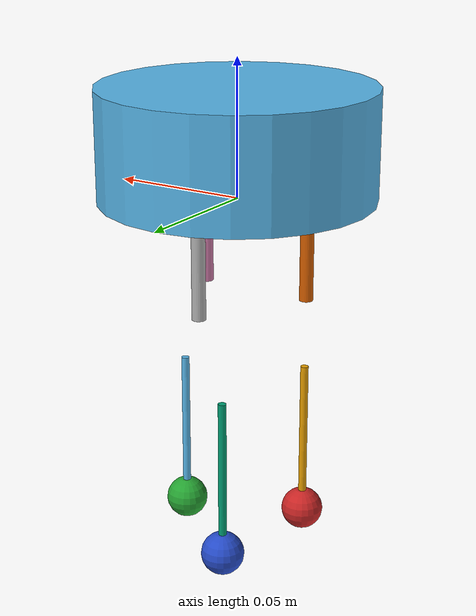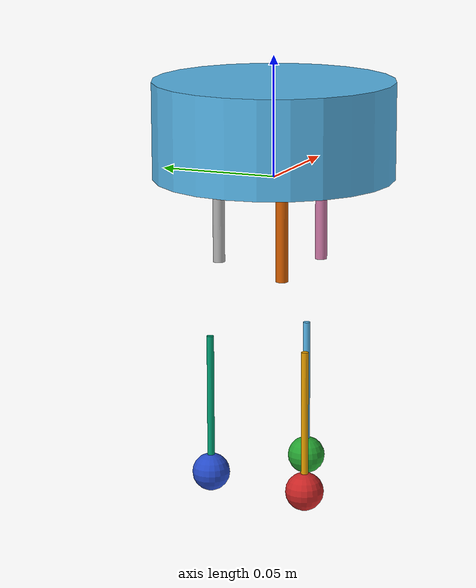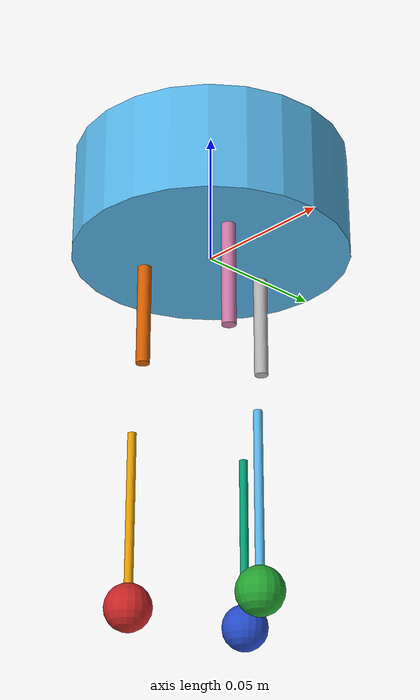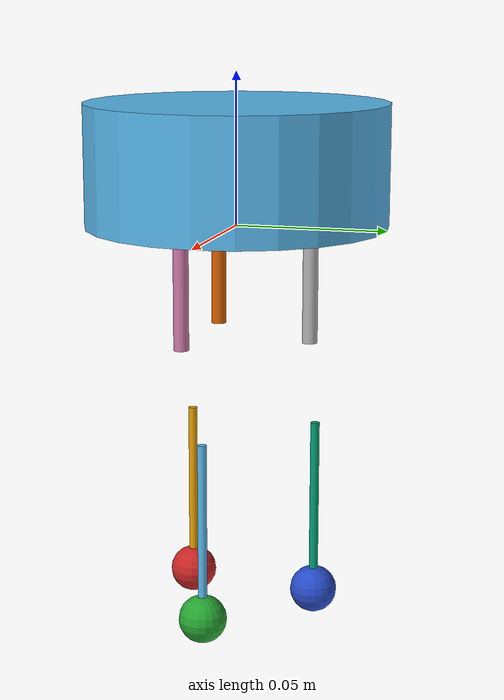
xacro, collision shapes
<?xml version="1.0"?>
<robot xmlns:xacro="http://www.ros.org/wiki/xacro" name="gurdy">

    <gazebo> <!-- This activates the gazebo control plugin for the Gurdy namespace. This namespace will be set in the main spawn launch file -->
        <plugin name="gazebo_ros_control" filename="libgazebo_ros_control.so">
            <robotNamespace>/gurdy</robotNamespace>
        </plugin>
    </gazebo>

    <!-- * * * XACROS * * * -->
    <xacro:property name="rotary_joint_lower_limit" value="-0.9" />
    <xacro:property name="rotary_joint_upper_limit" value="0.9" />
    <xacro:property name="rotary_joint_effort_limit" value="1" />
    <xacro:property name="rotary_joint_velocity_limit" value="0.005" />

    <xacro:property name="upperleg_joint_lower_limit" value="-2.9" />
    <xacro:property name="upperleg_joint_upper_limit" value="1.57" />
    <xacro:property name="upperleg_joint_effort_limit" value="1" />
    <xacro:property name="upperleg_joint_velocity_limit" value="0.005" />

    <xacro:property name="lowerleg_joint_lower_limit" value="-1.55" />
    <xacro:property name="lowerleg_joint_upper_limit" value="0" />
    <xacro:property name="lowerleg_joint_effort_limit" value="1" />
    <xacro:property name="lowerleg_joint_velocity_limit" value="0.005" />

    <!-- * * * MACROS * * * -->
    <!-- Rotary Joints -->
    <xacro:macro name="virtual_link" params="number">
        <link name='virtual_M${number}_link'>
            <inertial>
                <origin rpy="0 0 0" xyz="0 0 0"/>
                <mass value="0.001"/>
                <inertia ixx="0.001" ixy="0" ixz="0" iyy="0.001" iyz="0" izz="0.001"/>
            </inertial>
        </link>
    </xacro:macro>

    <xacro:macro name="z_rotary_transmission" params="number">
        <transmission name="tran${number}">
            <type>transmission_interface/SimpleTransmission</type>
            <joint name="z_rotary_M${number}_joint">
                <hardwareInterface>EffortJointInterface</hardwareInterface>
            </joint>
            <actuator name="motor${number}">
                <hardwareInterface>EffortJointInterface</hardwareInterface>
                <mechanicalReduction>1</mechanicalReduction>
            </actuator>
        </transmission>
    </xacro:macro>

    <!-- Upperlegs -->
    <xacro:macro name="upperleg_link" params="number">
        <link name="upperleg_M${number}_link">
            <inertial>
                <origin rpy="0 0 0" xyz="0 0 0"/>
                <mass value="0.01" />
                <inertia ixx="3.015625e-06" ixy="0.0" ixz="0.0" iyy="3.015625e-06" iyz="0.0" izz="3.125e-08"/>
            </inertial>
            <collision>
                <origin xyz="0 0 0" rpy="0 0 0"/>
                <geometry>
                    <cylinder radius="0.0025" length="0.06"/>
                </geometry>
            </collision>
            <visual>
                <origin rpy="0 0 0" xyz="0 0 0"/>
                <geometry>
                    <mesh filename="package://my_gurdy_description/models/gurdy/meshes/gurdy_higherleg_v2.dae"/>
                </geometry>
            </visual>
        </link>
    </xacro:macro>

    <xacro:macro name="upperleg_joint" params="number">
        <joint name="head_upperlegM${number}_joint" type="revolute">
            <parent link="virtual_M${number}_link"/>
            <child link="upperleg_M${number}_link"/>
            <origin xyz="0 0 0" rpy="0 0 0"/>
            <limit lower="${upperleg_joint_lower_limit}"
                   upper="${upperleg_joint_upper_limit}"
                   effort="${upperleg_joint_effort_limit}"
                   velocity="${upperleg_joint_velocity_limit}" />
            <axis xyz="0 1 0"/>
        </joint>
    </xacro:macro>

    <xacro:macro name="upperleg_transmission" params="number">
        <transmission name="tran${number}">
            <type>transmission_interface/SimpleTransmission</type>
            <joint name="head_upperlegM${number}_joint">
                <hardwareInterface>EffortJointInterface</hardwareInterface>
            </joint>
            <actuator name="motor${number}">
                <hardwareInterface>EffortJointInterface</hardwareInterface>
                <mechanicalReduction>1</mechanicalReduction>
            </actuator>
        </transmission>
    </xacro:macro>

    <!-- Lowerlegs -->
    <xacro:macro name="lowerleg_link" params="number">
        <link name="lowerleg_M${number}_link">
            <inertial>
                <origin rpy="0 0 0" xyz="0 0 0.03"/>
                <mass value="0.01" />
                <inertia ixx="3.005625e-06" ixy="0.0" ixz="0.0" iyy="3.005625e-06" iyz="0.0" izz="1.125e-08"/>
            </inertial>
            <collision>
                <origin rpy="0 0 0" xyz="0 0 0.03"/>
                <geometry>
                    <cylinder radius="0.0015" length="0.06"/>
                </geometry>
            </collision>
            <visual>
                <origin rpy="0 0 0" xyz="0 0 0"/>
                <geometry>
                    <mesh filename="package://my_gurdy_description/models/gurdy/meshes/gurdy_lowerleg_v2.dae"/>
                </geometry>
            </visual>
        </link>
    </xacro:macro>

    <xacro:macro name="lowerleg_joint" params="number">
        <joint name="upperlegM${number}_lowerlegM${number}_joint" type="revolute">
            <parent link="upperleg_M${number}_link"/>
            <child link="lowerleg_M${number}_link"/>
            <origin xyz="0 0.0095 0.06" rpy="0 0 3.14159"/>
            <limit lower="${lowerleg_joint_lower_limit}"
                   upper="${lowerleg_joint_upper_limit}"
                   effort="${lowerleg_joint_effort_limit}"
                   velocity="${lowerleg_joint_velocity_limit}" />
            <axis xyz="0 1 0"/>
        </joint>
    </xacro:macro>

    <xacro:macro name="lowerleg_transmission" params="number">
        <transmission name="tran${number}">
            <type>transmission_interface/SimpleTransmission</type>
            <joint name="upperlegM${number}_lowerlegM${number}_joint">
                <hardwareInterface>EffortJointInterface</hardwareInterface>
            </joint>
            <actuator name="motor${number}">
                <hardwareInterface>EffortJointInterface</hardwareInterface>
                <mechanicalReduction>1</mechanicalReduction>
            </actuator>
        </transmission>
    </xacro:macro>

    <!-- Feet -->
    <xacro:macro name="foot_link" params="number">
        <link name="footM${number}_link">
            <inertial>
                <origin xyz="0 0 0" rpy="0 0 0"/>
                <mass value="0.01" />
                <inertia ixx="2.56e-07" ixy="0.0" ixz="0.0" iyy="2.56e-07" iyz="0.0" izz="2.56e-07"/>
            </inertial>
            <collision>
                <origin xyz="0 0 0" rpy="0 0 0"/>
                <geometry>
                    <sphere radius="0.008"/>
                </geometry>
            </collision>
            <visual>
                <origin rpy="0 0 0" xyz="0 0 0"/>
                <geometry>
                    <sphere radius="0.008"/>
                </geometry>
            </visual>
        </link>
    </xacro:macro>

    <xacro:macro name="foot_gazebo" params="number color">
        <gazebo reference="footM${number}_link">
            <kp>1000.0</kp> <!-- Static contact stiffness -->
            <kd>1000.0</kd> <!-- Dynamic contact stiffness -->
            <mu1>10.0</mu1> <!-- Static friction coefficient -->
            <mu2>10.0</mu2> <!-- Dynamic friction coefficient -->
            <material>Gazebo/${color}</material> <!-- This is the colour for the Gazebo simulation. Not applicable for dae files since the colours are embedded in the 3Dfile -->
        </gazebo>
    </xacro:macro>

    <xacro:macro name="foot_joint" params="number">
        <joint name="lowerlegM${number}_footM${number}_joint" type="fixed">
            <parent link="lowerleg_M${number}_link"/>
            <child link="footM${number}_link"/>
            <origin xyz="0 0 0.06" rpy="0 0 0"/>
        </joint>
    </xacro:macro>

	<!-- * * * LINK & JOINT DEFINITIONS * * * -->
    <!-- Base & Head -->
    <link name="base_link">
        <visual>
            <origin rpy="0 0 0" xyz="0 0 0"/>
            <geometry>
                <box size="0.01 0.01 0.01"/>
            </geometry>
        </visual>
    </link>

    <link name="head_link">
        <inertial>
            <origin rpy="0 0 0" xyz="0 0 0.02"/>
            <mass value="0.01" />
            <inertia ixx="7.5833e-06" ixy="0.0" ixz="0.0" iyy="7.5833e-06" iyz="0.0" izz="1.25e-05"/>
        </inertial>
        <collision>
            <origin rpy="0 0 0" xyz="0 0 0.02"/>
            <geometry>
                <cylinder radius="0.05" length="0.04"/>
            </geometry>
        </collision>
        <visual>
            <origin rpy="0 0 0" xyz="0 0 0"/>
            <geometry>
                <mesh filename="package://my_gurdy_description/models/gurdy/meshes/gurdy_head_v2.dae"/>
            </geometry>
        </visual>
    </link>
    <gazebo reference="head_link">
        <mu1>10.0</mu1> <!-- Static friction coefficient -->
        <mu2>10.0</mu2> <!-- Dynamic friction coefficient -->
    </gazebo>

    <joint name="head_joint" type="fixed">
        <parent link="base_link"/>
        <child link="head_link"/>
        <origin xyz="0 0 0" rpy="0 0 0"/>
    </joint>

    <!-- Rotary Joints -->
    <!-- NOTE: when placing a link in space, first goes the positioning from the joint, and then the positioning of the link. So the position of the link is with respect to the origin of the joint! -->
    <xacro:virtual_link number="1"/>
    <joint name="z_rotary_M1_joint" type="revolute">
        <parent link="head_link"/>
        <child link="virtual_M1_link"/>
        <origin xyz="-0.02165 -0.0125 -0.008" rpy="3.14159 0 0.523599"/>
        <limit lower="${rotary_joint_lower_limit}"
               upper="${rotary_joint_upper_limit}"
               effort="${rotary_joint_effort_limit}"
               velocity="${rotary_joint_velocity_limit}" />
        <axis xyz="0 0 1"/>
    </joint>
    <xacro:z_rotary_transmission number="1"/>

    <xacro:virtual_link number="2"/>
    <joint name="z_rotary_M2_joint" type="revolute">
        <parent link="head_link"/>
        <child link="virtual_M2_link"/>
        <origin xyz="0.02165 -0.0125 -0.008" rpy="3.14159 0 2.61799"/>
        <limit lower="${rotary_joint_lower_limit}"
               upper="${rotary_joint_upper_limit}"
               effort="${rotary_joint_effort_limit}"
               velocity="${rotary_joint_velocity_limit}" />
        <axis xyz="0 0 1"/>
    </joint>
    <xacro:z_rotary_transmission number="2"/>

    <xacro:virtual_link number="3"/>
    <joint name="z_rotary_M3_joint" type="revolute">
        <parent link="head_link"/>
        <child link="virtual_M3_link"/>
        <origin xyz="0 0.025 -0.008" rpy="3.14159 0 -1.5708"/>
        <limit lower="${rotary_joint_lower_limit}"
               upper="${rotary_joint_upper_limit}"
               effort="${rotary_joint_effort_limit}"
               velocity="${rotary_joint_velocity_limit}" />
        <axis xyz="0 0 1"/>
    </joint>
    <xacro:z_rotary_transmission number="3"/>

    <!-- Upper Legs -->
    <xacro:upperleg_link number="1"/>
    <xacro:upperleg_joint number="1"/>
    <xacro:upperleg_transmission number="1"/>

    <xacro:upperleg_link number="2"/>
    <xacro:upperleg_joint number="2"/>
    <xacro:upperleg_transmission number="2"/>

    <xacro:upperleg_link number="3"/>
    <xacro:upperleg_joint number="3"/>
    <xacro:upperleg_transmission number="3"/>

    <!-- Lower Legs -->
    <xacro:lowerleg_link number="1"/>
    <xacro:lowerleg_joint number="1"/>
    <xacro:lowerleg_transmission number="1"/>

    <xacro:lowerleg_link number="2"/>
    <xacro:lowerleg_joint number="2"/>
    <xacro:lowerleg_transmission number="2"/>

    <xacro:lowerleg_link number="3"/>
    <xacro:lowerleg_joint number="3"/>
    <xacro:lowerleg_transmission number="3"/>

    <!-- Feet -->
    <xacro:foot_link number="1"/>
    <xacro:foot_gazebo number="1" color="Red"/>
    <xacro:foot_joint number="1"/>

    <xacro:foot_link number="2"/>
    <xacro:foot_gazebo number="2" color="Green"/>
    <xacro:foot_joint number="2"/>

    <xacro:foot_link number="3"/>
    <xacro:foot_gazebo number="3" color="Blue"/>
    <xacro:foot_joint number="3"/>

    <!-- * * * SENSORS * * * -->
    <!-- IMU -->
    <gazebo>
        <plugin name="gazebo_ros_imu_controller" filename="libgazebo_ros_imu.so">
        <robotNamespace>/gurdy</robotNamespace>
        <topicName>imu/data</topicName>
        <serviceName>imu/service</serviceName>
        <bodyName>base_link</bodyName>
        <gaussianNoise>0</gaussianNoise>
        <rpyOffsets>0 0 0</rpyOffsets>
        <updateRate>10.0</updateRate>
        <alwaysOn>true</alwaysOn>
        <gaussianNoise>0</gaussianNoise>
        </plugin>
    </gazebo>

</robot>
